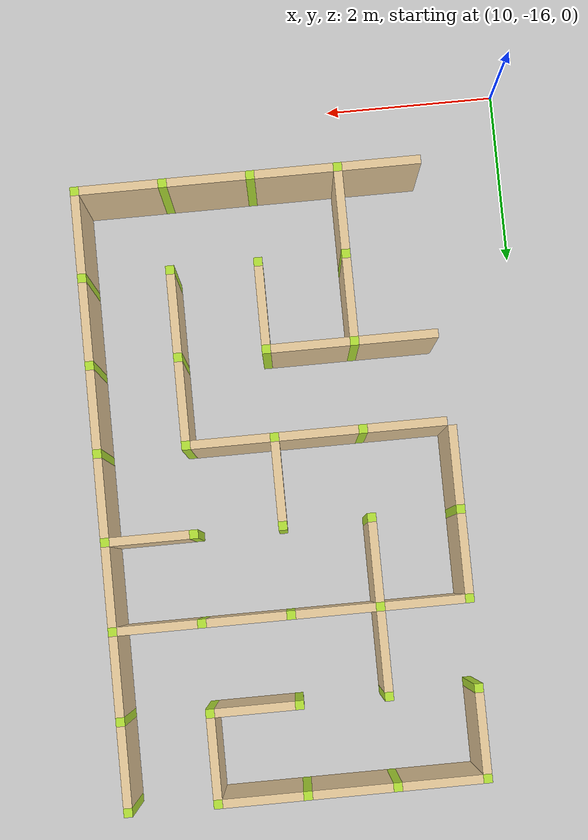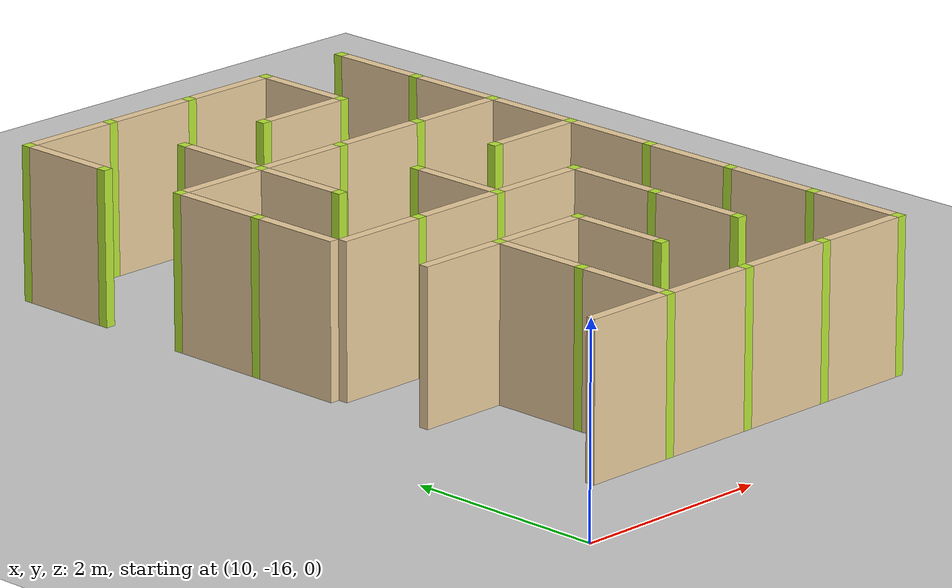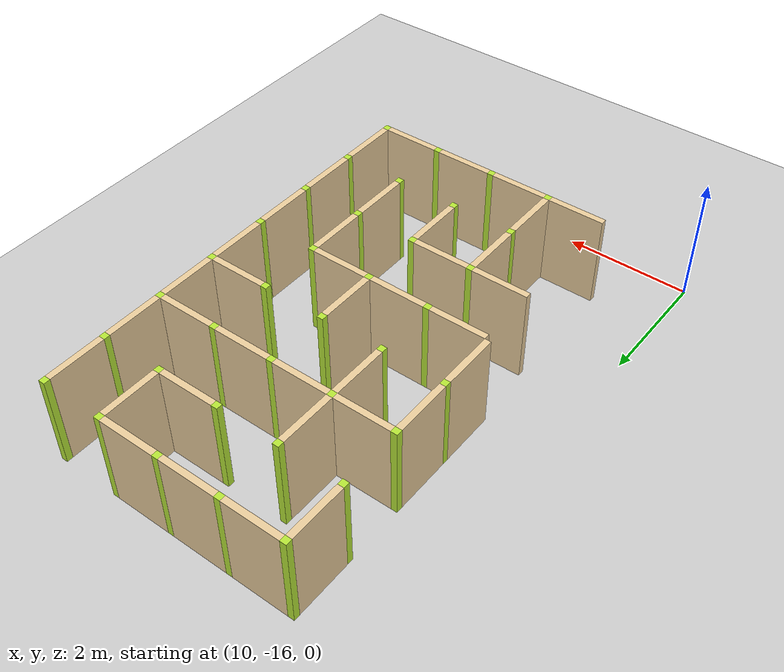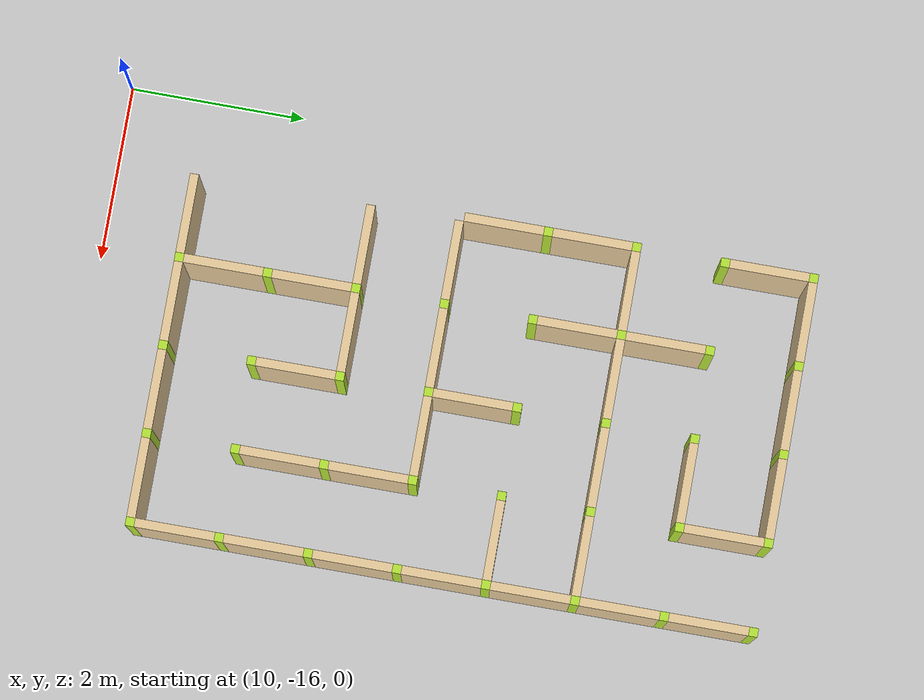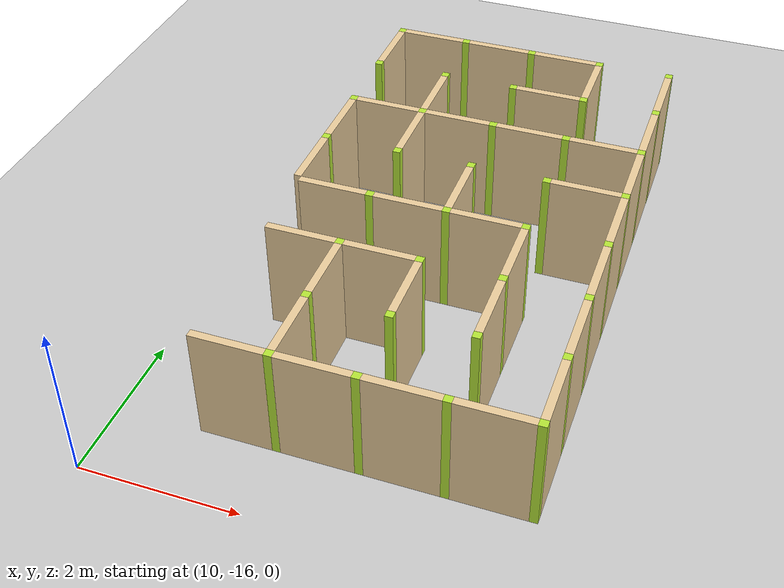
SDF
<sdf version="1.4">
 <world name="maze_world">
  <model name="ground">
   <static>true</static>
   <link name="ground_link">
    <collision name="collision1"><geometry><plane><normal>0 0 1</normal></plane></geometry></collision>
    <visual name="visual1"><geometry><plane><normal>0 0 1</normal><size>100 100</size></plane></geometry></visual>
   </link>
  </model>
  <model name="Untitled">
   <link name="Wall_11_8_h">
    <collision name="Wall_0_Collision">
     <geometry><box><size>0.9 0.1 1.5</size></box></geometry>
     <pose>0 0 0.75 0 -0 0</pose>
    </collision>
    <visual name="Wall_0_Visual">
     <pose>0 0 0.75 0 -0 0</pose>
     <geometry><box><size>0.9 0.1 1.5</size></box></geometry>
     <material>
      <script><uri>file://media/materials/scripts/gazebo.material</uri><name>Gazebo/Grey</name></script>
      <ambient>0.921569 0.807843 0.615686 1</ambient>
     </material>
     <meta><layer>0</layer></meta>
    </visual>
    <pose>11.5 -8 0 0 -0 0</pose>
   </link>
   <link name="Wall_11_8_v">
    <collision name="Wall_0_Collision">
     <geometry><box><size>0.9 0.1 1.5</size></box></geometry>
     <pose>0 0 0.75 0 -0 0</pose>
    </collision>
    <visual name="Wall_0_Visual">
     <pose>0 0 0.75 0 -0 0</pose>
     <geometry><box><size>0.9 0.1 1.5</size></box></geometry>
     <material>
      <script><uri>file://media/materials/scripts/gazebo.material</uri><name>Gazebo/Grey</name></script>
      <ambient>0.921569 0.807843 0.615686 1</ambient>
     </material>
     <meta><layer>0</layer></meta>
    </visual>
    <pose>11 -8.5 0 0 -0 1.5708</pose>
   </link>
   <link name="Joint_11_-8">
    <collision name="Wall_2_Collision">
     <geometry><box><size>0.1 0.1 1.5</size></box></geometry>
     <pose>0 0 0.75 0 -0 0</pose>
    </collision>
    <visual name="Wall_2_Visual">
     <pose>0 0 0.75 0 -0 0</pose>
     <geometry><box><size>0.1 0.1 1.5</size></box></geometry>
     <material>
      <script><uri>file://media/materials/scripts/gazebo.material</uri><name>Gazebo/Grey</name></script>
      <ambient>0.721569 0.907843 0.215686 1</ambient>
     </material>
     <meta><layer>0</layer></meta>
    </visual>
    <pose>11 -8 0 0 -0 0</pose>
   </link>
   <link name="Wall_12_8_h">
    <collision name="Wall_0_Collision">
     <geometry><box><size>0.9 0.1 1.5</size></box></geometry>
     <pose>0 0 0.75 0 -0 0</pose>
    </collision>
    <visual name="Wall_0_Visual">
     <pose>0 0 0.75 0 -0 0</pose>
     <geometry><box><size>0.9 0.1 1.5</size></box></geometry>
     <material>
      <script><uri>file://media/materials/scripts/gazebo.material</uri><name>Gazebo/Grey</name></script>
      <ambient>0.921569 0.807843 0.615686 1</ambient>
     </material>
     <meta><layer>0</layer></meta>
    </visual>
    <pose>12.5 -8 0 0 -0 0</pose>
   </link>
   <link name="Joint_12_-8">
    <collision name="Wall_2_Collision">
     <geometry><box><size>0.1 0.1 1.5</size></box></geometry>
     <pose>0 0 0.75 0 -0 0</pose>
    </collision>
    <visual name="Wall_2_Visual">
     <pose>0 0 0.75 0 -0 0</pose>
     <geometry><box><size>0.1 0.1 1.5</size></box></geometry>
     <material>
      <script><uri>file://media/materials/scripts/gazebo.material</uri><name>Gazebo/Grey</name></script>
      <ambient>0.721569 0.907843 0.215686 1</ambient>
     </material>
     <meta><layer>0</layer></meta>
    </visual>
    <pose>12 -8 0 0 -0 0</pose>
   </link>
   <link name="Wall_13_8_h">
    <collision name="Wall_0_Collision">
     <geometry><box><size>0.9 0.1 1.5</size></box></geometry>
     <pose>0 0 0.75 0 -0 0</pose>
    </collision>
    <visual name="Wall_0_Visual">
     <pose>0 0 0.75 0 -0 0</pose>
     <geometry><box><size>0.9 0.1 1.5</size></box></geometry>
     <material>
      <script><uri>file://media/materials/scripts/gazebo.material</uri><name>Gazebo/Grey</name></script>
      <ambient>0.921569 0.807843 0.615686 1</ambient>
     </material>
     <meta><layer>0</layer></meta>
    </visual>
    <pose>13.5 -8 0 0 -0 0</pose>
   </link>
   <link name="Joint_13_-8">
    <collision name="Wall_2_Collision">
     <geometry><box><size>0.1 0.1 1.5</size></box></geometry>
     <pose>0 0 0.75 0 -0 0</pose>
    </collision>
    <visual name="Wall_2_Visual">
     <pose>0 0 0.75 0 -0 0</pose>
     <geometry><box><size>0.1 0.1 1.5</size></box></geometry>
     <material>
      <script><uri>file://media/materials/scripts/gazebo.material</uri><name>Gazebo/Grey</name></script>
      <ambient>0.721569 0.907843 0.215686 1</ambient>
     </material>
     <meta><layer>0</layer></meta>
    </visual>
    <pose>13 -8 0 0 -0 0</pose>
   </link>
   <link name="Wall_14_8_v">
    <collision name="Wall_0_Collision">
     <geometry><box><size>0.9 0.1 1.5</size></box></geometry>
     <pose>0 0 0.75 0 -0 0</pose>
    </collision>
    <visual name="Wall_0_Visual">
     <pose>0 0 0.75 0 -0 0</pose>
     <geometry><box><size>0.9 0.1 1.5</size></box></geometry>
     <material>
      <script><uri>file://media/materials/scripts/gazebo.material</uri><name>Gazebo/Grey</name></script>
      <ambient>0.921569 0.807843 0.615686 1</ambient>
     </material>
     <meta><layer>0</layer></meta>
    </visual>
    <pose>14 -8.5 0 0 -0 1.5708</pose>
   </link>
   <link name="Joint_14_-8">
    <collision name="Wall_2_Collision">
     <geometry><box><size>0.1 0.1 1.5</size></box></geometry>
     <pose>0 0 0.75 0 -0 0</pose>
    </collision>
    <visual name="Wall_2_Visual">
     <pose>0 0 0.75 0 -0 0</pose>
     <geometry><box><size>0.1 0.1 1.5</size></box></geometry>
     <material>
      <script><uri>file://media/materials/scripts/gazebo.material</uri><name>Gazebo/Grey</name></script>
      <ambient>0.721569 0.907843 0.215686 1</ambient>
     </material>
     <meta><layer>0</layer></meta>
    </visual>
    <pose>14 -8 0 0 -0 0</pose>
   </link>
   <link name="Wall_15_8_v">
    <collision name="Wall_0_Collision">
     <geometry><box><size>0.9 0.1 1.5</size></box></geometry>
     <pose>0 0 0.75 0 -0 0</pose>
    </collision>
    <visual name="Wall_0_Visual">
     <pose>0 0 0.75 0 -0 0</pose>
     <geometry><box><size>0.9 0.1 1.5</size></box></geometry>
     <material>
      <script><uri>file://media/materials/scripts/gazebo.material</uri><name>Gazebo/Grey</name></script>
      <ambient>0.921569 0.807843 0.615686 1</ambient>
     </material>
     <meta><layer>0</layer></meta>
    </visual>
    <pose>15 -8.5 0 0 -0 1.5708</pose>
   </link>
   <link name="Joint_15_-8">
    <collision name="Wall_2_Collision">
     <geometry><box><size>0.1 0.1 1.5</size></box></geometry>
     <pose>0 0 0.75 0 -0 0</pose>
    </collision>
    <visual name="Wall_2_Visual">
     <pose>0 0 0.75 0 -0 0</pose>
     <geometry><box><size>0.1 0.1 1.5</size></box></geometry>
     <material>
      <script><uri>file://media/materials/scripts/gazebo.material</uri><name>Gazebo/Grey</name></script>
      <ambient>0.721569 0.907843 0.215686 1</ambient>
     </material>
     <meta><layer>0</layer></meta>
    </visual>
    <pose>15 -8 0 0 -0 0</pose>
   </link>
   <link name="Joint_11_-9">
    <collision name="Wall_2_Collision">
     <geometry><box><size>0.1 0.1 1.5</size></box></geometry>
     <pose>0 0 0.75 0 -0 0</pose>
    </collision>
    <visual name="Wall_2_Visual">
     <pose>0 0 0.75 0 -0 0</pose>
     <geometry><box><size>0.1 0.1 1.5</size></box></geometry>
     <material>
      <script><uri>file://media/materials/scripts/gazebo.material</uri><name>Gazebo/Grey</name></script>
      <ambient>0.721569 0.907843 0.215686 1</ambient>
     </material>
     <meta><layer>0</layer></meta>
    </visual>
    <pose>11 -9 0 0 -0 0</pose>
   </link>
   <link name="Wall_12_9_v">
    <collision name="Wall_0_Collision">
     <geometry><box><size>0.9 0.1 1.5</size></box></geometry>
     <pose>0 0 0.75 0 -0 0</pose>
    </collision>
    <visual name="Wall_0_Visual">
     <pose>0 0 0.75 0 -0 0</pose>
     <geometry><box><size>0.9 0.1 1.5</size></box></geometry>
     <material>
      <script><uri>file://media/materials/scripts/gazebo.material</uri><name>Gazebo/Grey</name></script>
      <ambient>0.921569 0.807843 0.615686 1</ambient>
     </material>
     <meta><layer>0</layer></meta>
    </visual>
    <pose>12 -9.5 0 0 -0 1.5708</pose>
   </link>
   <link name="Joint_12_-9">
    <collision name="Wall_2_Collision">
     <geometry><box><size>0.1 0.1 1.5</size></box></geometry>
     <pose>0 0 0.75 0 -0 0</pose>
    </collision>
    <visual name="Wall_2_Visual">
     <pose>0 0 0.75 0 -0 0</pose>
     <geometry><box><size>0.1 0.1 1.5</size></box></geometry>
     <material>
      <script><uri>file://media/materials/scripts/gazebo.material</uri><name>Gazebo/Grey</name></script>
      <ambient>0.721569 0.907843 0.215686 1</ambient>
     </material>
     <meta><layer>0</layer></meta>
    </visual>
    <pose>12 -9 0 0 -0 0</pose>
   </link>
   <link name="Wall_13_9_h">
    <collision name="Wall_0_Collision">
     <geometry><box><size>0.9 0.1 1.5</size></box></geometry>
     <pose>0 0 0.75 0 -0 0</pose>
    </collision>
    <visual name="Wall_0_Visual">
     <pose>0 0 0.75 0 -0 0</pose>
     <geometry><box><size>0.9 0.1 1.5</size></box></geometry>
     <material>
      <script><uri>file://media/materials/scripts/gazebo.material</uri><name>Gazebo/Grey</name></script>
      <ambient>0.921569 0.807843 0.615686 1</ambient>
     </material>
     <meta><layer>0</layer></meta>
    </visual>
    <pose>13.5 -9 0 0 -0 0</pose>
   </link>
   <link name="Joint_13_-9">
    <collision name="Wall_2_Collision">
     <geometry><box><size>0.1 0.1 1.5</size></box></geometry>
     <pose>0 0 0.75 0 -0 0</pose>
    </collision>
    <visual name="Wall_2_Visual">
     <pose>0 0 0.75 0 -0 0</pose>
     <geometry><box><size>0.1 0.1 1.5</size></box></geometry>
     <material>
      <script><uri>file://media/materials/scripts/gazebo.material</uri><name>Gazebo/Grey</name></script>
      <ambient>0.721569 0.907843 0.215686 1</ambient>
     </material>
     <meta><layer>0</layer></meta>
    </visual>
    <pose>13 -9 0 0 -0 0</pose>
   </link>
   <link name="Joint_14_-9">
    <collision name="Wall_2_Collision">
     <geometry><box><size>0.1 0.1 1.5</size></box></geometry>
     <pose>0 0 0.75 0 -0 0</pose>
    </collision>
    <visual name="Wall_2_Visual">
     <pose>0 0 0.75 0 -0 0</pose>
     <geometry><box><size>0.1 0.1 1.5</size></box></geometry>
     <material>
      <script><uri>file://media/materials/scripts/gazebo.material</uri><name>Gazebo/Grey</name></script>
      <ambient>0.721569 0.907843 0.215686 1</ambient>
     </material>
     <meta><layer>0</layer></meta>
    </visual>
    <pose>14 -9 0 0 -0 0</pose>
   </link>
   <link name="Wall_15_9_v">
    <collision name="Wall_0_Collision">
     <geometry><box><size>0.9 0.1 1.5</size></box></geometry>
     <pose>0 0 0.75 0 -0 0</pose>
    </collision>
    <visual name="Wall_0_Visual">
     <pose>0 0 0.75 0 -0 0</pose>
     <geometry><box><size>0.9 0.1 1.5</size></box></geometry>
     <material>
      <script><uri>file://media/materials/scripts/gazebo.material</uri><name>Gazebo/Grey</name></script>
      <ambient>0.921569 0.807843 0.615686 1</ambient>
     </material>
     <meta><layer>0</layer></meta>
    </visual>
    <pose>15 -9.5 0 0 -0 1.5708</pose>
   </link>
   <link name="Joint_15_-9">
    <collision name="Wall_2_Collision">
     <geometry><box><size>0.1 0.1 1.5</size></box></geometry>
     <pose>0 0 0.75 0 -0 0</pose>
    </collision>
    <visual name="Wall_2_Visual">
     <pose>0 0 0.75 0 -0 0</pose>
     <geometry><box><size>0.1 0.1 1.5</size></box></geometry>
     <material>
      <script><uri>file://media/materials/scripts/gazebo.material</uri><name>Gazebo/Grey</name></script>
      <ambient>0.721569 0.907843 0.215686 1</ambient>
     </material>
     <meta><layer>0</layer></meta>
    </visual>
    <pose>15 -9 0 0 -0 0</pose>
   </link>
   <link name="Wall_11_10_h">
    <collision name="Wall_0_Collision">
     <geometry><box><size>0.9 0.1 1.5</size></box></geometry>
     <pose>0 0 0.75 0 -0 0</pose>
    </collision>
    <visual name="Wall_0_Visual">
     <pose>0 0 0.75 0 -0 0</pose>
     <geometry><box><size>0.9 0.1 1.5</size></box></geometry>
     <material>
      <script><uri>file://media/materials/scripts/gazebo.material</uri><name>Gazebo/Grey</name></script>
      <ambient>0.921569 0.807843 0.615686 1</ambient>
     </material>
     <meta><layer>0</layer></meta>
    </visual>
    <pose>11.5 -10 0 0 -0 0</pose>
   </link>
   <link name="Wall_11_10_v">
    <collision name="Wall_0_Collision">
     <geometry><box><size>0.9 0.1 1.5</size></box></geometry>
     <pose>0 0 0.75 0 -0 0</pose>
    </collision>
    <visual name="Wall_0_Visual">
     <pose>0 0 0.75 0 -0 0</pose>
     <geometry><box><size>0.9 0.1 1.5</size></box></geometry>
     <material>
      <script><uri>file://media/materials/scripts/gazebo.material</uri><name>Gazebo/Grey</name></script>
      <ambient>0.921569 0.807843 0.615686 1</ambient>
     </material>
     <meta><layer>0</layer></meta>
    </visual>
    <pose>11 -10.5 0 0 -0 1.5708</pose>
   </link>
   <link name="Joint_11_-10">
    <collision name="Wall_2_Collision">
     <geometry><box><size>0.1 0.1 1.5</size></box></geometry>
     <pose>0 0 0.75 0 -0 0</pose>
    </collision>
    <visual name="Wall_2_Visual">
     <pose>0 0 0.75 0 -0 0</pose>
     <geometry><box><size>0.1 0.1 1.5</size></box></geometry>
     <material>
      <script><uri>file://media/materials/scripts/gazebo.material</uri><name>Gazebo/Grey</name></script>
      <ambient>0.721569 0.907843 0.215686 1</ambient>
     </material>
     <meta><layer>0</layer></meta>
    </visual>
    <pose>11 -10 0 0 -0 0</pose>
   </link>
   <link name="Wall_12_10_h">
    <collision name="Wall_0_Collision">
     <geometry><box><size>0.9 0.1 1.5</size></box></geometry>
     <pose>0 0 0.75 0 -0 0</pose>
    </collision>
    <visual name="Wall_0_Visual">
     <pose>0 0 0.75 0 -0 0</pose>
     <geometry><box><size>0.9 0.1 1.5</size></box></geometry>
     <material>
      <script><uri>file://media/materials/scripts/gazebo.material</uri><name>Gazebo/Grey</name></script>
      <ambient>0.921569 0.807843 0.615686 1</ambient>
     </material>
     <meta><layer>0</layer></meta>
    </visual>
    <pose>12.5 -10 0 0 -0 0</pose>
   </link>
   <link name="Wall_12_10_v">
    <collision name="Wall_0_Collision">
     <geometry><box><size>0.9 0.1 1.5</size></box></geometry>
     <pose>0 0 0.75 0 -0 0</pose>
    </collision>
    <visual name="Wall_0_Visual">
     <pose>0 0 0.75 0 -0 0</pose>
     <geometry><box><size>0.9 0.1 1.5</size></box></geometry>
     <material>
      <script><uri>file://media/materials/scripts/gazebo.material</uri><name>Gazebo/Grey</name></script>
      <ambient>0.921569 0.807843 0.615686 1</ambient>
     </material>
     <meta><layer>0</layer></meta>
    </visual>
    <pose>12 -10.5 0 0 -0 1.5708</pose>
   </link>
   <link name="Joint_12_-10">
    <collision name="Wall_2_Collision">
     <geometry><box><size>0.1 0.1 1.5</size></box></geometry>
     <pose>0 0 0.75 0 -0 0</pose>
    </collision>
    <visual name="Wall_2_Visual">
     <pose>0 0 0.75 0 -0 0</pose>
     <geometry><box><size>0.1 0.1 1.5</size></box></geometry>
     <material>
      <script><uri>file://media/materials/scripts/gazebo.material</uri><name>Gazebo/Grey</name></script>
      <ambient>0.721569 0.907843 0.215686 1</ambient>
     </material>
     <meta><layer>0</layer></meta>
    </visual>
    <pose>12 -10 0 0 -0 0</pose>
   </link>
   <link name="Wall_13_10_h">
    <collision name="Wall_0_Collision">
     <geometry><box><size>0.9 0.1 1.5</size></box></geometry>
     <pose>0 0 0.75 0 -0 0</pose>
    </collision>
    <visual name="Wall_0_Visual">
     <pose>0 0 0.75 0 -0 0</pose>
     <geometry><box><size>0.9 0.1 1.5</size></box></geometry>
     <material>
      <script><uri>file://media/materials/scripts/gazebo.material</uri><name>Gazebo/Grey</name></script>
      <ambient>0.921569 0.807843 0.615686 1</ambient>
     </material>
     <meta><layer>0</layer></meta>
    </visual>
    <pose>13.5 -10 0 0 -0 0</pose>
   </link>
   <link name="Joint_13_-10">
    <collision name="Wall_2_Collision">
     <geometry><box><size>0.1 0.1 1.5</size></box></geometry>
     <pose>0 0 0.75 0 -0 0</pose>
    </collision>
    <visual name="Wall_2_Visual">
     <pose>0 0 0.75 0 -0 0</pose>
     <geometry><box><size>0.1 0.1 1.5</size></box></geometry>
     <material>
      <script><uri>file://media/materials/scripts/gazebo.material</uri><name>Gazebo/Grey</name></script>
      <ambient>0.721569 0.907843 0.215686 1</ambient>
     </material>
     <meta><layer>0</layer></meta>
    </visual>
    <pose>13 -10 0 0 -0 0</pose>
   </link>
   <link name="Wall_14_10_h">
    <collision name="Wall_0_Collision">
     <geometry><box><size>0.9 0.1 1.5</size></box></geometry>
     <pose>0 0 0.75 0 -0 0</pose>
    </collision>
    <visual name="Wall_0_Visual">
     <pose>0 0 0.75 0 -0 0</pose>
     <geometry><box><size>0.9 0.1 1.5</size></box></geometry>
     <material>
      <script><uri>file://media/materials/scripts/gazebo.material</uri><name>Gazebo/Grey</name></script>
      <ambient>0.921569 0.807843 0.615686 1</ambient>
     </material>
     <meta><layer>0</layer></meta>
    </visual>
    <pose>14.5 -10 0 0 -0 0</pose>
   </link>
   <link name="Joint_14_-10">
    <collision name="Wall_2_Collision">
     <geometry><box><size>0.1 0.1 1.5</size></box></geometry>
     <pose>0 0 0.75 0 -0 0</pose>
    </collision>
    <visual name="Wall_2_Visual">
     <pose>0 0 0.75 0 -0 0</pose>
     <geometry><box><size>0.1 0.1 1.5</size></box></geometry>
     <material>
      <script><uri>file://media/materials/scripts/gazebo.material</uri><name>Gazebo/Grey</name></script>
      <ambient>0.721569 0.907843 0.215686 1</ambient>
     </material>
     <meta><layer>0</layer></meta>
    </visual>
    <pose>14 -10 0 0 -0 0</pose>
   </link>
   <link name="Wall_15_10_v">
    <collision name="Wall_0_Collision">
     <geometry><box><size>0.9 0.1 1.5</size></box></geometry>
     <pose>0 0 0.75 0 -0 0</pose>
    </collision>
    <visual name="Wall_0_Visual">
     <pose>0 0 0.75 0 -0 0</pose>
     <geometry><box><size>0.9 0.1 1.5</size></box></geometry>
     <material>
      <script><uri>file://media/materials/scripts/gazebo.material</uri><name>Gazebo/Grey</name></script>
      <ambient>0.921569 0.807843 0.615686 1</ambient>
     </material>
     <meta><layer>0</layer></meta>
    </visual>
    <pose>15 -10.5 0 0 -0 1.5708</pose>
   </link>
   <link name="Joint_15_-10">
    <collision name="Wall_2_Collision">
     <geometry><box><size>0.1 0.1 1.5</size></box></geometry>
     <pose>0 0 0.75 0 -0 0</pose>
    </collision>
    <visual name="Wall_2_Visual">
     <pose>0 0 0.75 0 -0 0</pose>
     <geometry><box><size>0.1 0.1 1.5</size></box></geometry>
     <material>
      <script><uri>file://media/materials/scripts/gazebo.material</uri><name>Gazebo/Grey</name></script>
      <ambient>0.721569 0.907843 0.215686 1</ambient>
     </material>
     <meta><layer>0</layer></meta>
    </visual>
    <pose>15 -10 0 0 -0 0</pose>
   </link>
   <link name="Wall_11_11_v">
    <collision name="Wall_0_Collision">
     <geometry><box><size>0.9 0.1 1.5</size></box></geometry>
     <pose>0 0 0.75 0 -0 0</pose>
    </collision>
    <visual name="Wall_0_Visual">
     <pose>0 0 0.75 0 -0 0</pose>
     <geometry><box><size>0.9 0.1 1.5</size></box></geometry>
     <material>
      <script><uri>file://media/materials/scripts/gazebo.material</uri><name>Gazebo/Grey</name></script>
      <ambient>0.921569 0.807843 0.615686 1</ambient>
     </material>
     <meta><layer>0</layer></meta>
    </visual>
    <pose>11 -11.5 0 0 -0 1.5708</pose>
   </link>
   <link name="Joint_11_-11">
    <collision name="Wall_2_Collision">
     <geometry><box><size>0.1 0.1 1.5</size></box></geometry>
     <pose>0 0 0.75 0 -0 0</pose>
    </collision>
    <visual name="Wall_2_Visual">
     <pose>0 0 0.75 0 -0 0</pose>
     <geometry><box><size>0.1 0.1 1.5</size></box></geometry>
     <material>
      <script><uri>file://media/materials/scripts/gazebo.material</uri><name>Gazebo/Grey</name></script>
      <ambient>0.721569 0.907843 0.215686 1</ambient>
     </material>
     <meta><layer>0</layer></meta>
    </visual>
    <pose>11 -11 0 0 -0 0</pose>
   </link>
   <link name="Joint_12_-11">
    <collision name="Wall_2_Collision">
     <geometry><box><size>0.1 0.1 1.5</size></box></geometry>
     <pose>0 0 0.75 0 -0 0</pose>
    </collision>
    <visual name="Wall_2_Visual">
     <pose>0 0 0.75 0 -0 0</pose>
     <geometry><box><size>0.1 0.1 1.5</size></box></geometry>
     <material>
      <script><uri>file://media/materials/scripts/gazebo.material</uri><name>Gazebo/Grey</name></script>
      <ambient>0.721569 0.907843 0.215686 1</ambient>
     </material>
     <meta><layer>0</layer></meta>
    </visual>
    <pose>12 -11 0 0 -0 0</pose>
   </link>
   <link name="Wall_13_11_v">
    <collision name="Wall_0_Collision">
     <geometry><box><size>0.9 0.1 1.5</size></box></geometry>
     <pose>0 0 0.75 0 -0 0</pose>
    </collision>
    <visual name="Wall_0_Visual">
     <pose>0 0 0.75 0 -0 0</pose>
     <geometry><box><size>0.9 0.1 1.5</size></box></geometry>
     <material>
      <script><uri>file://media/materials/scripts/gazebo.material</uri><name>Gazebo/Grey</name></script>
      <ambient>0.921569 0.807843 0.615686 1</ambient>
     </material>
     <meta><layer>0</layer></meta>
    </visual>
    <pose>13 -11.5 0 0 -0 1.5708</pose>
   </link>
   <link name="Joint_13_-11">
    <collision name="Wall_2_Collision">
     <geometry><box><size>0.1 0.1 1.5</size></box></geometry>
     <pose>0 0 0.75 0 -0 0</pose>
    </collision>
    <visual name="Wall_2_Visual">
     <pose>0 0 0.75 0 -0 0</pose>
     <geometry><box><size>0.1 0.1 1.5</size></box></geometry>
     <material>
      <script><uri>file://media/materials/scripts/gazebo.material</uri><name>Gazebo/Grey</name></script>
      <ambient>0.721569 0.907843 0.215686 1</ambient>
     </material>
     <meta><layer>0</layer></meta>
    </visual>
    <pose>13 -11 0 0 -0 0</pose>
   </link>
   <link name="Wall_14_11_h">
    <collision name="Wall_0_Collision">
     <geometry><box><size>0.9 0.1 1.5</size></box></geometry>
     <pose>0 0 0.75 0 -0 0</pose>
    </collision>
    <visual name="Wall_0_Visual">
     <pose>0 0 0.75 0 -0 0</pose>
     <geometry><box><size>0.9 0.1 1.5</size></box></geometry>
     <material>
      <script><uri>file://media/materials/scripts/gazebo.material</uri><name>Gazebo/Grey</name></script>
      <ambient>0.921569 0.807843 0.615686 1</ambient>
     </material>
     <meta><layer>0</layer></meta>
    </visual>
    <pose>14.5 -11 0 0 -0 0</pose>
   </link>
   <link name="Joint_14_-11">
    <collision name="Wall_2_Collision">
     <geometry><box><size>0.1 0.1 1.5</size></box></geometry>
     <pose>0 0 0.75 0 -0 0</pose>
    </collision>
    <visual name="Wall_2_Visual">
     <pose>0 0 0.75 0 -0 0</pose>
     <geometry><box><size>0.1 0.1 1.5</size></box></geometry>
     <material>
      <script><uri>file://media/materials/scripts/gazebo.material</uri><name>Gazebo/Grey</name></script>
      <ambient>0.721569 0.907843 0.215686 1</ambient>
     </material>
     <meta><layer>0</layer></meta>
    </visual>
    <pose>14 -11 0 0 -0 0</pose>
   </link>
   <link name="Wall_15_11_v">
    <collision name="Wall_0_Collision">
     <geometry><box><size>0.9 0.1 1.5</size></box></geometry>
     <pose>0 0 0.75 0 -0 0</pose>
    </collision>
    <visual name="Wall_0_Visual">
     <pose>0 0 0.75 0 -0 0</pose>
     <geometry><box><size>0.9 0.1 1.5</size></box></geometry>
     <material>
      <script><uri>file://media/materials/scripts/gazebo.material</uri><name>Gazebo/Grey</name></script>
      <ambient>0.921569 0.807843 0.615686 1</ambient>
     </material>
     <meta><layer>0</layer></meta>
    </visual>
    <pose>15 -11.5 0 0 -0 1.5708</pose>
   </link>
   <link name="Joint_15_-11">
    <collision name="Wall_2_Collision">
     <geometry><box><size>0.1 0.1 1.5</size></box></geometry>
     <pose>0 0 0.75 0 -0 0</pose>
    </collision>
    <visual name="Wall_2_Visual">
     <pose>0 0 0.75 0 -0 0</pose>
     <geometry><box><size>0.1 0.1 1.5</size></box></geometry>
     <material>
      <script><uri>file://media/materials/scripts/gazebo.material</uri><name>Gazebo/Grey</name></script>
      <ambient>0.721569 0.907843 0.215686 1</ambient>
     </material>
     <meta><layer>0</layer></meta>
    </visual>
    <pose>15 -11 0 0 -0 0</pose>
   </link>
   <link name="Wall_11_12_h">
    <collision name="Wall_0_Collision">
     <geometry><box><size>0.9 0.1 1.5</size></box></geometry>
     <pose>0 0 0.75 0 -0 0</pose>
    </collision>
    <visual name="Wall_0_Visual">
     <pose>0 0 0.75 0 -0 0</pose>
     <geometry><box><size>0.9 0.1 1.5</size></box></geometry>
     <material>
      <script><uri>file://media/materials/scripts/gazebo.material</uri><name>Gazebo/Grey</name></script>
      <ambient>0.921569 0.807843 0.615686 1</ambient>
     </material>
     <meta><layer>0</layer></meta>
    </visual>
    <pose>11.5 -12 0 0 -0 0</pose>
   </link>
   <link name="Wall_12_12_h">
    <collision name="Wall_0_Collision">
     <geometry><box><size>0.9 0.1 1.5</size></box></geometry>
     <pose>0 0 0.75 0 -0 0</pose>
    </collision>
    <visual name="Wall_0_Visual">
     <pose>0 0 0.75 0 -0 0</pose>
     <geometry><box><size>0.9 0.1 1.5</size></box></geometry>
     <material>
      <script><uri>file://media/materials/scripts/gazebo.material</uri><name>Gazebo/Grey</name></script>
      <ambient>0.921569 0.807843 0.615686 1</ambient>
     </material>
     <meta><layer>0</layer></meta>
    </visual>
    <pose>12.5 -12 0 0 -0 0</pose>
   </link>
   <link name="Joint_12_-12">
    <collision name="Wall_2_Collision">
     <geometry><box><size>0.1 0.1 1.5</size></box></geometry>
     <pose>0 0 0.75 0 -0 0</pose>
    </collision>
    <visual name="Wall_2_Visual">
     <pose>0 0 0.75 0 -0 0</pose>
     <geometry><box><size>0.1 0.1 1.5</size></box></geometry>
     <material>
      <script><uri>file://media/materials/scripts/gazebo.material</uri><name>Gazebo/Grey</name></script>
      <ambient>0.721569 0.907843 0.215686 1</ambient>
     </material>
     <meta><layer>0</layer></meta>
    </visual>
    <pose>12 -12 0 0 -0 0</pose>
   </link>
   <link name="Wall_13_12_h">
    <collision name="Wall_0_Collision">
     <geometry><box><size>0.9 0.1 1.5</size></box></geometry>
     <pose>0 0 0.75 0 -0 0</pose>
    </collision>
    <visual name="Wall_0_Visual">
     <pose>0 0 0.75 0 -0 0</pose>
     <geometry><box><size>0.9 0.1 1.5</size></box></geometry>
     <material>
      <script><uri>file://media/materials/scripts/gazebo.material</uri><name>Gazebo/Grey</name></script>
      <ambient>0.921569 0.807843 0.615686 1</ambient>
     </material>
     <meta><layer>0</layer></meta>
    </visual>
    <pose>13.5 -12 0 0 -0 0</pose>
   </link>
   <link name="Joint_13_-12">
    <collision name="Wall_2_Collision">
     <geometry><box><size>0.1 0.1 1.5</size></box></geometry>
     <pose>0 0 0.75 0 -0 0</pose>
    </collision>
    <visual name="Wall_2_Visual">
     <pose>0 0 0.75 0 -0 0</pose>
     <geometry><box><size>0.1 0.1 1.5</size></box></geometry>
     <material>
      <script><uri>file://media/materials/scripts/gazebo.material</uri><name>Gazebo/Grey</name></script>
      <ambient>0.721569 0.907843 0.215686 1</ambient>
     </material>
     <meta><layer>0</layer></meta>
    </visual>
    <pose>13 -12 0 0 -0 0</pose>
   </link>
   <link name="Wall_14_12_v">
    <collision name="Wall_0_Collision">
     <geometry><box><size>0.9 0.1 1.5</size></box></geometry>
     <pose>0 0 0.75 0 -0 0</pose>
    </collision>
    <visual name="Wall_0_Visual">
     <pose>0 0 0.75 0 -0 0</pose>
     <geometry><box><size>0.9 0.1 1.5</size></box></geometry>
     <material>
      <script><uri>file://media/materials/scripts/gazebo.material</uri><name>Gazebo/Grey</name></script>
      <ambient>0.921569 0.807843 0.615686 1</ambient>
     </material>
     <meta><layer>0</layer></meta>
    </visual>
    <pose>14 -12.5 0 0 -0 1.5708</pose>
   </link>
   <link name="Joint_14_-12">
    <collision name="Wall_2_Collision">
     <geometry><box><size>0.1 0.1 1.5</size></box></geometry>
     <pose>0 0 0.75 0 -0 0</pose>
    </collision>
    <visual name="Wall_2_Visual">
     <pose>0 0 0.75 0 -0 0</pose>
     <geometry><box><size>0.1 0.1 1.5</size></box></geometry>
     <material>
      <script><uri>file://media/materials/scripts/gazebo.material</uri><name>Gazebo/Grey</name></script>
      <ambient>0.721569 0.907843 0.215686 1</ambient>
     </material>
     <meta><layer>0</layer></meta>
    </visual>
    <pose>14 -12 0 0 -0 0</pose>
   </link>
   <link name="Wall_15_12_v">
    <collision name="Wall_0_Collision">
     <geometry><box><size>0.9 0.1 1.5</size></box></geometry>
     <pose>0 0 0.75 0 -0 0</pose>
    </collision>
    <visual name="Wall_0_Visual">
     <pose>0 0 0.75 0 -0 0</pose>
     <geometry><box><size>0.9 0.1 1.5</size></box></geometry>
     <material>
      <script><uri>file://media/materials/scripts/gazebo.material</uri><name>Gazebo/Grey</name></script>
      <ambient>0.921569 0.807843 0.615686 1</ambient>
     </material>
     <meta><layer>0</layer></meta>
    </visual>
    <pose>15 -12.5 0 0 -0 1.5708</pose>
   </link>
   <link name="Joint_15_-12">
    <collision name="Wall_2_Collision">
     <geometry><box><size>0.1 0.1 1.5</size></box></geometry>
     <pose>0 0 0.75 0 -0 0</pose>
    </collision>
    <visual name="Wall_2_Visual">
     <pose>0 0 0.75 0 -0 0</pose>
     <geometry><box><size>0.1 0.1 1.5</size></box></geometry>
     <material>
      <script><uri>file://media/materials/scripts/gazebo.material</uri><name>Gazebo/Grey</name></script>
      <ambient>0.721569 0.907843 0.215686 1</ambient>
     </material>
     <meta><layer>0</layer></meta>
    </visual>
    <pose>15 -12 0 0 -0 0</pose>
   </link>
   <link name="Wall_11_13_h">
    <collision name="Wall_0_Collision">
     <geometry><box><size>0.9 0.1 1.5</size></box></geometry>
     <pose>0 0 0.75 0 -0 0</pose>
    </collision>
    <visual name="Wall_0_Visual">
     <pose>0 0 0.75 0 -0 0</pose>
     <geometry><box><size>0.9 0.1 1.5</size></box></geometry>
     <material>
      <script><uri>file://media/materials/scripts/gazebo.material</uri><name>Gazebo/Grey</name></script>
      <ambient>0.921569 0.807843 0.615686 1</ambient>
     </material>
     <meta><layer>0</layer></meta>
    </visual>
    <pose>11.5 -13 0 0 -0 0</pose>
   </link>
   <link name="Wall_12_13_h">
    <collision name="Wall_0_Collision">
     <geometry><box><size>0.9 0.1 1.5</size></box></geometry>
     <pose>0 0 0.75 0 -0 0</pose>
    </collision>
    <visual name="Wall_0_Visual">
     <pose>0 0 0.75 0 -0 0</pose>
     <geometry><box><size>0.9 0.1 1.5</size></box></geometry>
     <material>
      <script><uri>file://media/materials/scripts/gazebo.material</uri><name>Gazebo/Grey</name></script>
      <ambient>0.921569 0.807843 0.615686 1</ambient>
     </material>
     <meta><layer>0</layer></meta>
    </visual>
    <pose>12.5 -13 0 0 -0 0</pose>
   </link>
   <link name="Wall_12_13_v">
    <collision name="Wall_0_Collision">
     <geometry><box><size>0.9 0.1 1.5</size></box></geometry>
     <pose>0 0 0.75 0 -0 0</pose>
    </collision>
    <visual name="Wall_0_Visual">
     <pose>0 0 0.75 0 -0 0</pose>
     <geometry><box><size>0.9 0.1 1.5</size></box></geometry>
     <material>
      <script><uri>file://media/materials/scripts/gazebo.material</uri><name>Gazebo/Grey</name></script>
      <ambient>0.921569 0.807843 0.615686 1</ambient>
     </material>
     <meta><layer>0</layer></meta>
    </visual>
    <pose>12 -13.5 0 0 -0 1.5708</pose>
   </link>
   <link name="Joint_12_-13">
    <collision name="Wall_2_Collision">
     <geometry><box><size>0.1 0.1 1.5</size></box></geometry>
     <pose>0 0 0.75 0 -0 0</pose>
    </collision>
    <visual name="Wall_2_Visual">
     <pose>0 0 0.75 0 -0 0</pose>
     <geometry><box><size>0.1 0.1 1.5</size></box></geometry>
     <material>
      <script><uri>file://media/materials/scripts/gazebo.material</uri><name>Gazebo/Grey</name></script>
      <ambient>0.721569 0.907843 0.215686 1</ambient>
     </material>
     <meta><layer>0</layer></meta>
    </visual>
    <pose>12 -13 0 0 -0 0</pose>
   </link>
   <link name="Wall_13_13_v">
    <collision name="Wall_0_Collision">
     <geometry><box><size>0.9 0.1 1.5</size></box></geometry>
     <pose>0 0 0.75 0 -0 0</pose>
    </collision>
    <visual name="Wall_0_Visual">
     <pose>0 0 0.75 0 -0 0</pose>
     <geometry><box><size>0.9 0.1 1.5</size></box></geometry>
     <material>
      <script><uri>file://media/materials/scripts/gazebo.material</uri><name>Gazebo/Grey</name></script>
      <ambient>0.921569 0.807843 0.615686 1</ambient>
     </material>
     <meta><layer>0</layer></meta>
    </visual>
    <pose>13 -13.5 0 0 -0 1.5708</pose>
   </link>
   <link name="Joint_13_-13">
    <collision name="Wall_2_Collision">
     <geometry><box><size>0.1 0.1 1.5</size></box></geometry>
     <pose>0 0 0.75 0 -0 0</pose>
    </collision>
    <visual name="Wall_2_Visual">
     <pose>0 0 0.75 0 -0 0</pose>
     <geometry><box><size>0.1 0.1 1.5</size></box></geometry>
     <material>
      <script><uri>file://media/materials/scripts/gazebo.material</uri><name>Gazebo/Grey</name></script>
      <ambient>0.721569 0.907843 0.215686 1</ambient>
     </material>
     <meta><layer>0</layer></meta>
    </visual>
    <pose>13 -13 0 0 -0 0</pose>
   </link>
   <link name="Wall_14_13_v">
    <collision name="Wall_0_Collision">
     <geometry><box><size>0.9 0.1 1.5</size></box></geometry>
     <pose>0 0 0.75 0 -0 0</pose>
    </collision>
    <visual name="Wall_0_Visual">
     <pose>0 0 0.75 0 -0 0</pose>
     <geometry><box><size>0.9 0.1 1.5</size></box></geometry>
     <material>
      <script><uri>file://media/materials/scripts/gazebo.material</uri><name>Gazebo/Grey</name></script>
      <ambient>0.921569 0.807843 0.615686 1</ambient>
     </material>
     <meta><layer>0</layer></meta>
    </visual>
    <pose>14 -13.5 0 0 -0 1.5708</pose>
   </link>
   <link name="Joint_14_-13">
    <collision name="Wall_2_Collision">
     <geometry><box><size>0.1 0.1 1.5</size></box></geometry>
     <pose>0 0 0.75 0 -0 0</pose>
    </collision>
    <visual name="Wall_2_Visual">
     <pose>0 0 0.75 0 -0 0</pose>
     <geometry><box><size>0.1 0.1 1.5</size></box></geometry>
     <material>
      <script><uri>file://media/materials/scripts/gazebo.material</uri><name>Gazebo/Grey</name></script>
      <ambient>0.721569 0.907843 0.215686 1</ambient>
     </material>
     <meta><layer>0</layer></meta>
    </visual>
    <pose>14 -13 0 0 -0 0</pose>
   </link>
   <link name="Wall_15_13_v">
    <collision name="Wall_0_Collision">
     <geometry><box><size>0.9 0.1 1.5</size></box></geometry>
     <pose>0 0 0.75 0 -0 0</pose>
    </collision>
    <visual name="Wall_0_Visual">
     <pose>0 0 0.75 0 -0 0</pose>
     <geometry><box><size>0.9 0.1 1.5</size></box></geometry>
     <material>
      <script><uri>file://media/materials/scripts/gazebo.material</uri><name>Gazebo/Grey</name></script>
      <ambient>0.921569 0.807843 0.615686 1</ambient>
     </material>
     <meta><layer>0</layer></meta>
    </visual>
    <pose>15 -13.5 0 0 -0 1.5708</pose>
   </link>
   <link name="Joint_15_-13">
    <collision name="Wall_2_Collision">
     <geometry><box><size>0.1 0.1 1.5</size></box></geometry>
     <pose>0 0 0.75 0 -0 0</pose>
    </collision>
    <visual name="Wall_2_Visual">
     <pose>0 0 0.75 0 -0 0</pose>
     <geometry><box><size>0.1 0.1 1.5</size></box></geometry>
     <material>
      <script><uri>file://media/materials/scripts/gazebo.material</uri><name>Gazebo/Grey</name></script>
      <ambient>0.721569 0.907843 0.215686 1</ambient>
     </material>
     <meta><layer>0</layer></meta>
    </visual>
    <pose>15 -13 0 0 -0 0</pose>
   </link>
   <link name="Wall_11_15_h">
    <collision name="Wall_0_Collision">
     <geometry><box><size>0.9 0.1 1.5</size></box></geometry>
     <pose>0 0 0.75 0 -0 0</pose>
    </collision>
    <visual name="Wall_0_Visual">
     <pose>0 0 0.75 0 -0 0</pose>
     <geometry><box><size>0.9 0.1 1.5</size></box></geometry>
     <material>
      <script><uri>file://media/materials/scripts/gazebo.material</uri><name>Gazebo/Grey</name></script>
      <ambient>0.921569 0.807843 0.615686 1</ambient>
     </material>
     <meta><layer>0</layer></meta>
    </visual>
    <pose>11.5 -15 0 0 -0 0</pose>
   </link>
   <link name="Wall_12_14_v">
    <collision name="Wall_0_Collision">
     <geometry><box><size>0.9 0.1 1.5</size></box></geometry>
     <pose>0 0 0.75 0 -0 0</pose>
    </collision>
    <visual name="Wall_0_Visual">
     <pose>0 0 0.75 0 -0 0</pose>
     <geometry><box><size>0.9 0.1 1.5</size></box></geometry>
     <material>
      <script><uri>file://media/materials/scripts/gazebo.material</uri><name>Gazebo/Grey</name></script>
      <ambient>0.921569 0.807843 0.615686 1</ambient>
     </material>
     <meta><layer>0</layer></meta>
    </visual>
    <pose>12 -14.5 0 0 -0 1.5708</pose>
   </link>
   <link name="Joint_12_-14">
    <collision name="Wall_2_Collision">
     <geometry><box><size>0.1 0.1 1.5</size></box></geometry>
     <pose>0 0 0.75 0 -0 0</pose>
    </collision>
    <visual name="Wall_2_Visual">
     <pose>0 0 0.75 0 -0 0</pose>
     <geometry><box><size>0.1 0.1 1.5</size></box></geometry>
     <material>
      <script><uri>file://media/materials/scripts/gazebo.material</uri><name>Gazebo/Grey</name></script>
      <ambient>0.721569 0.907843 0.215686 1</ambient>
     </material>
     <meta><layer>0</layer></meta>
    </visual>
    <pose>12 -14 0 0 -0 0</pose>
   </link>
   <link name="Wall_12_15_h">
    <collision name="Wall_0_Collision">
     <geometry><box><size>0.9 0.1 1.5</size></box></geometry>
     <pose>0 0 0.75 0 -0 0</pose>
    </collision>
    <visual name="Wall_0_Visual">
     <pose>0 0 0.75 0 -0 0</pose>
     <geometry><box><size>0.9 0.1 1.5</size></box></geometry>
     <material>
      <script><uri>file://media/materials/scripts/gazebo.material</uri><name>Gazebo/Grey</name></script>
      <ambient>0.921569 0.807843 0.615686 1</ambient>
     </material>
     <meta><layer>0</layer></meta>
    </visual>
    <pose>12.5 -15 0 0 -0 0</pose>
   </link>
   <link name="Joint_12_-15">
    <collision name="Wall_2_Collision">
     <geometry><box><size>0.1 0.1 1.5</size></box></geometry>
     <pose>0 0 0.75 0 -0 0</pose>
    </collision>
    <visual name="Wall_2_Visual">
     <pose>0 0 0.75 0 -0 0</pose>
     <geometry><box><size>0.1 0.1 1.5</size></box></geometry>
     <material>
      <script><uri>file://media/materials/scripts/gazebo.material</uri><name>Gazebo/Grey</name></script>
      <ambient>0.721569 0.907843 0.215686 1</ambient>
     </material>
     <meta><layer>0</layer></meta>
    </visual>
    <pose>12 -15 0 0 -0 0</pose>
   </link>
   <link name="Joint_13_-14">
    <collision name="Wall_2_Collision">
     <geometry><box><size>0.1 0.1 1.5</size></box></geometry>
     <pose>0 0 0.75 0 -0 0</pose>
    </collision>
    <visual name="Wall_2_Visual">
     <pose>0 0 0.75 0 -0 0</pose>
     <geometry><box><size>0.1 0.1 1.5</size></box></geometry>
     <material>
      <script><uri>file://media/materials/scripts/gazebo.material</uri><name>Gazebo/Grey</name></script>
      <ambient>0.721569 0.907843 0.215686 1</ambient>
     </material>
     <meta><layer>0</layer></meta>
    </visual>
    <pose>13 -14 0 0 -0 0</pose>
   </link>
   <link name="Wall_13_15_h">
    <collision name="Wall_0_Collision">
     <geometry><box><size>0.9 0.1 1.5</size></box></geometry>
     <pose>0 0 0.75 0 -0 0</pose>
    </collision>
    <visual name="Wall_0_Visual">
     <pose>0 0 0.75 0 -0 0</pose>
     <geometry><box><size>0.9 0.1 1.5</size></box></geometry>
     <material>
      <script><uri>file://media/materials/scripts/gazebo.material</uri><name>Gazebo/Grey</name></script>
      <ambient>0.921569 0.807843 0.615686 1</ambient>
     </material>
     <meta><layer>0</layer></meta>
    </visual>
    <pose>13.5 -15 0 0 -0 0</pose>
   </link>
   <link name="Joint_13_-15">
    <collision name="Wall_2_Collision">
     <geometry><box><size>0.1 0.1 1.5</size></box></geometry>
     <pose>0 0 0.75 0 -0 0</pose>
    </collision>
    <visual name="Wall_2_Visual">
     <pose>0 0 0.75 0 -0 0</pose>
     <geometry><box><size>0.1 0.1 1.5</size></box></geometry>
     <material>
      <script><uri>file://media/materials/scripts/gazebo.material</uri><name>Gazebo/Grey</name></script>
      <ambient>0.721569 0.907843 0.215686 1</ambient>
     </material>
     <meta><layer>0</layer></meta>
    </visual>
    <pose>13 -15 0 0 -0 0</pose>
   </link>
   <link name="Joint_14_-14">
    <collision name="Wall_2_Collision">
     <geometry><box><size>0.1 0.1 1.5</size></box></geometry>
     <pose>0 0 0.75 0 -0 0</pose>
    </collision>
    <visual name="Wall_2_Visual">
     <pose>0 0 0.75 0 -0 0</pose>
     <geometry><box><size>0.1 0.1 1.5</size></box></geometry>
     <material>
      <script><uri>file://media/materials/scripts/gazebo.material</uri><name>Gazebo/Grey</name></script>
      <ambient>0.721569 0.907843 0.215686 1</ambient>
     </material>
     <meta><layer>0</layer></meta>
    </visual>
    <pose>14 -14 0 0 -0 0</pose>
   </link>
   <link name="Wall_14_15_h">
    <collision name="Wall_0_Collision">
     <geometry><box><size>0.9 0.1 1.5</size></box></geometry>
     <pose>0 0 0.75 0 -0 0</pose>
    </collision>
    <visual name="Wall_0_Visual">
     <pose>0 0 0.75 0 -0 0</pose>
     <geometry><box><size>0.9 0.1 1.5</size></box></geometry>
     <material>
      <script><uri>file://media/materials/scripts/gazebo.material</uri><name>Gazebo/Grey</name></script>
      <ambient>0.921569 0.807843 0.615686 1</ambient>
     </material>
     <meta><layer>0</layer></meta>
    </visual>
    <pose>14.5 -15 0 0 -0 0</pose>
   </link>
   <link name="Joint_14_-15">
    <collision name="Wall_2_Collision">
     <geometry><box><size>0.1 0.1 1.5</size></box></geometry>
     <pose>0 0 0.75 0 -0 0</pose>
    </collision>
    <visual name="Wall_2_Visual">
     <pose>0 0 0.75 0 -0 0</pose>
     <geometry><box><size>0.1 0.1 1.5</size></box></geometry>
     <material>
      <script><uri>file://media/materials/scripts/gazebo.material</uri><name>Gazebo/Grey</name></script>
      <ambient>0.721569 0.907843 0.215686 1</ambient>
     </material>
     <meta><layer>0</layer></meta>
    </visual>
    <pose>14 -15 0 0 -0 0</pose>
   </link>
   <link name="Wall_15_14_v">
    <collision name="Wall_0_Collision">
     <geometry><box><size>0.9 0.1 1.5</size></box></geometry>
     <pose>0 0 0.75 0 -0 0</pose>
    </collision>
    <visual name="Wall_0_Visual">
     <pose>0 0 0.75 0 -0 0</pose>
     <geometry><box><size>0.9 0.1 1.5</size></box></geometry>
     <material>
      <script><uri>file://media/materials/scripts/gazebo.material</uri><name>Gazebo/Grey</name></script>
      <ambient>0.921569 0.807843 0.615686 1</ambient>
     </material>
     <meta><layer>0</layer></meta>
    </visual>
    <pose>15 -14.5 0 0 -0 1.5708</pose>
   </link>
   <link name="Joint_15_-14">
    <collision name="Wall_2_Collision">
     <geometry><box><size>0.1 0.1 1.5</size></box></geometry>
     <pose>0 0 0.75 0 -0 0</pose>
    </collision>
    <visual name="Wall_2_Visual">
     <pose>0 0 0.75 0 -0 0</pose>
     <geometry><box><size>0.1 0.1 1.5</size></box></geometry>
     <material>
      <script><uri>file://media/materials/scripts/gazebo.material</uri><name>Gazebo/Grey</name></script>
      <ambient>0.721569 0.907843 0.215686 1</ambient>
     </material>
     <meta><layer>0</layer></meta>
    </visual>
    <pose>15 -14 0 0 -0 0</pose>
   </link>
   <link name="Joint_15_-15">
    <collision name="Wall_2_Collision">
     <geometry><box><size>0.1 0.1 1.5</size></box></geometry>
     <pose>0 0 0.75 0 -0 0</pose>
    </collision>
    <visual name="Wall_2_Visual">
     <pose>0 0 0.75 0 -0 0</pose>
     <geometry><box><size>0.1 0.1 1.5</size></box></geometry>
     <material>
      <script><uri>file://media/materials/scripts/gazebo.material</uri><name>Gazebo/Grey</name></script>
      <ambient>0.721569 0.907843 0.215686 1</ambient>
     </material>
     <meta><layer>0</layer></meta>
    </visual>
    <pose>15 -15 0 0 -0 0</pose>
   </link>
   <static>1</static>
  </model>
 </world>
</sdf>
